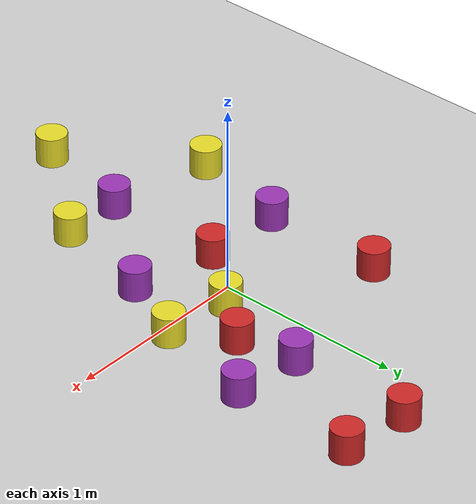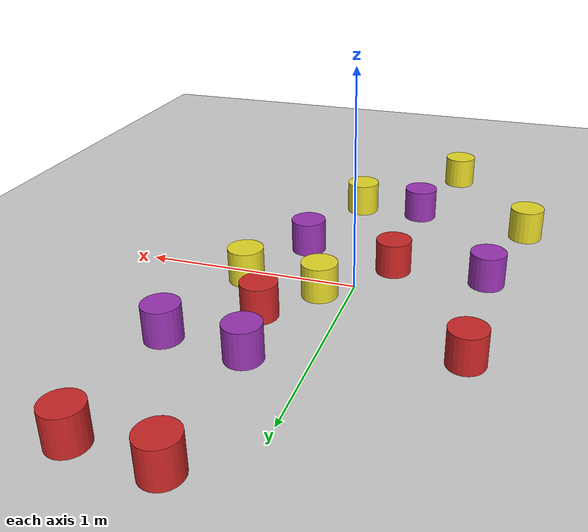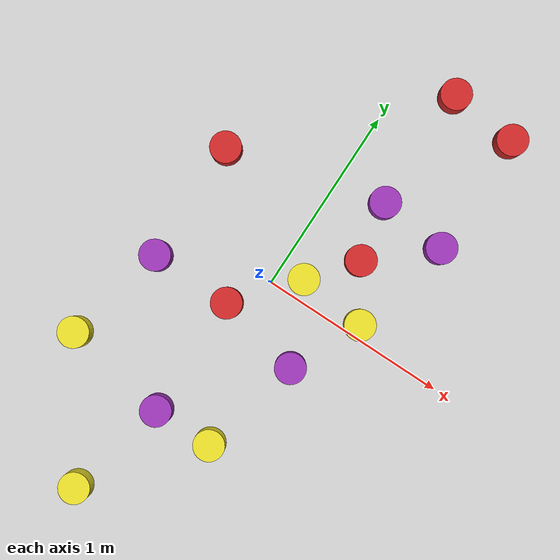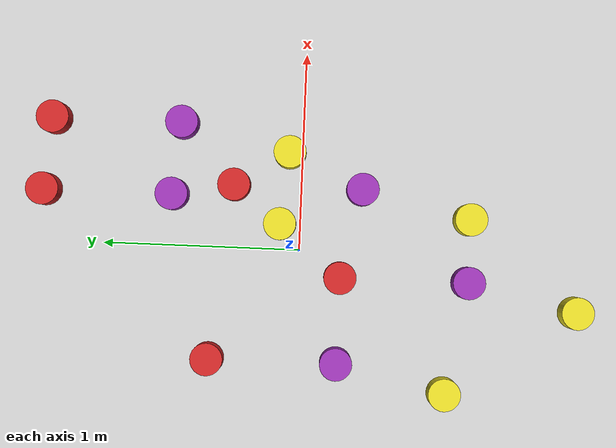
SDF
<sdf version="1.7">
 <world name="default">
  <model name="ground_plane">
   <static>1</static>
   <link name="link">
    <collision name="collision">
     <geometry><plane><normal>0 0 1</normal><size>100 100</size></plane></geometry>
     <surface>
      <contact><collide_bitmask>65535</collide_bitmask></contact>
      <friction><ode><mu>100</mu><mu2>50</mu2></ode></friction>
     </surface>
    </collision>
    <visual name="visual">
     <cast_shadows>0</cast_shadows>
     <geometry><plane><normal>0 0 1</normal><size>100 100</size></plane></geometry>
     <material>
      <script><uri>file://media/materials/scripts/gazebo.material</uri><name>Gazebo/Grey</name></script>
     </material>
    </visual>
   </link>
  </model>
  <model name="3obstacles_clone_1">
   <static>1</static>
   <link name="obstacle_1">
    <inertial>
     <mass>1</mass>
     <inertia>
      <ixx>1.73831e-05</ixx>
      <ixy>0</ixy>
      <ixz>0</ixz>
      <iyy>1.73831e-05</iyy>
      <iyz>0</iyz>
      <izz>1.4913e-05</izz>
     </inertia>
    </inertial>
    <pose>-0.44 1 0 0 -0 0</pose>
    <visual name="visual">
     <geometry><cylinder><radius>0.0820934</radius><length>0.16406</length></cylinder></geometry>
     <material>
      <lighting>1</lighting>
      <script><uri>file://media/materials/scripts/gazebo.material</uri><name>Gazebo/Red</name></script>
      <shader type="pixel"><normal_map>__default__</normal_map></shader>
      <ambient>1 0 0 1</ambient>
      <diffuse>1 0 0 1</diffuse>
      <specular>0.1 0.1 0.1 1</specular>
      <emissive>0 0 0 1</emissive>
     </material>
    </visual>
    <collision name="collision">
     <geometry><cylinder><radius>0.082093</radius><length>0.16406</length></cylinder></geometry>
     <surface>
      <friction>
       <ode><mu>1</mu><mu2>1</mu2><fdir1>0 0 0</fdir1><slip1>0</slip1><slip2>0</slip2></ode>
       <torsional>
        <coefficient>1</coefficient>
        <patch_radius>0</patch_radius>
        <surface_radius>0</surface_radius>
        <use_patch_radius>1</use_patch_radius>
        <ode><slip>0</slip></ode>
       </torsional>
      </friction>
      <bounce><restitution_coefficient>0</restitution_coefficient><threshold>1e+06</threshold></bounce>
      <contact>
       <collide_without_contact>0</collide_without_contact>
       <collide_without_contact_bitmask>1</collide_without_contact_bitmask>
       <collide_bitmask>1</collide_bitmask>
       <ode>
        <soft_cfm>0</soft_cfm>
        <soft_erp>0.2</soft_erp>
        <kp>1e+13</kp>
        <kd>1</kd>
        <max_vel>0.01</max_vel>
        <min_depth>0</min_depth>
       </ode>
       <bullet>
        <split_impulse>1</split_impulse>
        <split_impulse_penetration_threshold>-0.01</split_impulse_penetration_threshold>
        <soft_cfm>0</soft_cfm>
        <soft_erp>0.2</soft_erp>
        <kp>1e+13</kp>
        <kd>1</kd>
       </bullet>
      </contact>
     </surface>
    </collision>
   </link>
   <link name="obstacle_2">
    <inertial>
     <mass>0.00442567</mass>
     <inertia>
      <ixx>1.73831e-05</ixx>
      <ixy>0</ixy>
      <ixz>0</ixz>
      <iyy>1.73831e-05</iyy>
      <iyz>0</iyz>
      <izz>1.4913e-05</izz>
     </inertia>
    </inertial>
    <pose>-0.4398 0.35 0 0 -0 0</pose>
    <visual name="visual">
     <geometry><cylinder><radius>0.0820934</radius><length>0.16406</length></cylinder></geometry>
     <material>
      <lighting>1</lighting>
      <script><uri>file://media/materials/scripts/gazebo.material</uri><name>Gazebo/Purple</name></script>
      <shader type="pixel"><normal_map>__default__</normal_map></shader>
      <ambient>1 0 0 1</ambient>
      <diffuse>1 0 0 1</diffuse>
      <specular>0.1 0.1 0.1 1</specular>
      <emissive>0 0 0 1</emissive>
     </material>
    </visual>
    <collision name="collision">
     <geometry><cylinder><radius>0.082093</radius><length>0.16406</length></cylinder></geometry>
     <surface>
      <friction>
       <ode><mu>1</mu><mu2>1</mu2><fdir1>0 0 0</fdir1><slip1>0</slip1><slip2>0</slip2></ode>
       <torsional>
        <coefficient>1</coefficient>
        <patch_radius>0</patch_radius>
        <surface_radius>0</surface_radius>
        <use_patch_radius>1</use_patch_radius>
        <ode><slip>0</slip></ode>
       </torsional>
      </friction>
      <bounce><restitution_coefficient>0</restitution_coefficient><threshold>1e+06</threshold></bounce>
      <contact>
       <collide_without_contact>0</collide_without_contact>
       <collide_without_contact_bitmask>1</collide_without_contact_bitmask>
       <collide_bitmask>1</collide_bitmask>
       <ode>
        <soft_cfm>0</soft_cfm>
        <soft_erp>0.2</soft_erp>
        <kp>1e+13</kp>
        <kd>1</kd>
        <max_vel>0.01</max_vel>
        <min_depth>0</min_depth>
       </ode>
       <bullet>
        <split_impulse>1</split_impulse>
        <split_impulse_penetration_threshold>-0.01</split_impulse_penetration_threshold>
        <soft_cfm>0</soft_cfm>
        <soft_erp>0.2</soft_erp>
        <kp>1e+13</kp>
        <kd>1</kd>
       </bullet>
      </contact>
     </surface>
    </collision>
   </link>
   <link name="obstacle_3">
    <inertial>
     <mass>0.00442567</mass>
     <inertia>
      <ixx>1.73831e-05</ixx>
      <ixy>0</ixy>
      <ixz>0</ixz>
      <iyy>1.73831e-05</iyy>
      <iyz>0</iyz>
      <izz>1.4913e-05</izz>
     </inertia>
    </inertial>
    <pose>-0.57 -0.2 0 0 -0 0</pose>
    <visual name="visual">
     <geometry><cylinder><radius>0.0820934</radius><length>0.16406</length></cylinder></geometry>
     <material>
      <lighting>1</lighting>
      <script><uri>file://media/materials/scripts/gazebo.material</uri><name>Gazebo/Yellow</name></script>
      <shader type="pixel"><normal_map>__default__</normal_map></shader>
      <ambient>1 0 0 1</ambient>
      <diffuse>1 0 0 1</diffuse>
      <specular>0.1 0.1 0.1 1</specular>
      <emissive>0 0 0 1</emissive>
     </material>
    </visual>
    <collision name="collision">
     <geometry><cylinder><radius>0.082093</radius><length>0.16406</length></cylinder></geometry>
     <surface>
      <friction>
       <ode><mu>1</mu><mu2>1</mu2><fdir1>0 0 0</fdir1><slip1>0</slip1><slip2>0</slip2></ode>
       <torsional>
        <coefficient>1</coefficient>
        <patch_radius>0</patch_radius>
        <surface_radius>0</surface_radius>
        <use_patch_radius>1</use_patch_radius>
        <ode><slip>0</slip></ode>
       </torsional>
      </friction>
      <bounce><restitution_coefficient>0</restitution_coefficient><threshold>1e+06</threshold></bounce>
      <contact>
       <collide_without_contact>0</collide_without_contact>
       <collide_without_contact_bitmask>1</collide_without_contact_bitmask>
       <collide_bitmask>1</collide_bitmask>
       <ode>
        <soft_cfm>0</soft_cfm>
        <soft_erp>0.2</soft_erp>
        <kp>1e+13</kp>
        <kd>1</kd>
        <max_vel>0.01</max_vel>
        <min_depth>0</min_depth>
       </ode>
       <bullet>
        <split_impulse>1</split_impulse>
        <split_impulse_penetration_threshold>-0.01</split_impulse_penetration_threshold>
        <soft_cfm>0</soft_cfm>
        <soft_erp>0.2</soft_erp>
        <kp>1e+13</kp>
        <kd>1</kd>
       </bullet>
      </contact>
     </surface>
    </collision>
   </link>
   <static>1</static>
   <pose>0.701497 0.303004 0.077132 0 -0 0</pose>
  </model>
  <model name="3obstacles_clone_2">
   <static>1</static>
   <link name="obstacle_1">
    <inertial>
     <mass>1</mass>
     <inertia>
      <ixx>1.73831e-05</ixx>
      <ixy>0</ixy>
      <ixz>0</ixz>
      <iyy>1.73831e-05</iyy>
      <iyz>0</iyz>
      <izz>1.4913e-05</izz>
     </inertia>
    </inertial>
    <pose>-0.44 1 0 0 -0 0</pose>
    <visual name="visual">
     <geometry><cylinder><radius>0.0820934</radius><length>0.16406</length></cylinder></geometry>
     <material>
      <lighting>1</lighting>
      <script><uri>file://media/materials/scripts/gazebo.material</uri><name>Gazebo/Red</name></script>
      <shader type="pixel"><normal_map>__default__</normal_map></shader>
      <ambient>1 0 0 1</ambient>
      <diffuse>1 0 0 1</diffuse>
      <specular>0.1 0.1 0.1 1</specular>
      <emissive>0 0 0 1</emissive>
     </material>
    </visual>
    <collision name="collision">
     <geometry><cylinder><radius>0.082093</radius><length>0.16406</length></cylinder></geometry>
     <surface>
      <friction>
       <ode><mu>1</mu><mu2>1</mu2><fdir1>0 0 0</fdir1><slip1>0</slip1><slip2>0</slip2></ode>
       <torsional>
        <coefficient>1</coefficient>
        <patch_radius>0</patch_radius>
        <surface_radius>0</surface_radius>
        <use_patch_radius>1</use_patch_radius>
        <ode><slip>0</slip></ode>
       </torsional>
      </friction>
      <bounce><restitution_coefficient>0</restitution_coefficient><threshold>1e+06</threshold></bounce>
      <contact>
       <collide_without_contact>0</collide_without_contact>
       <collide_without_contact_bitmask>1</collide_without_contact_bitmask>
       <collide_bitmask>1</collide_bitmask>
       <ode>
        <soft_cfm>0</soft_cfm>
        <soft_erp>0.2</soft_erp>
        <kp>1e+13</kp>
        <kd>1</kd>
        <max_vel>0.01</max_vel>
        <min_depth>0</min_depth>
       </ode>
       <bullet>
        <split_impulse>1</split_impulse>
        <split_impulse_penetration_threshold>-0.01</split_impulse_penetration_threshold>
        <soft_cfm>0</soft_cfm>
        <soft_erp>0.2</soft_erp>
        <kp>1e+13</kp>
        <kd>1</kd>
       </bullet>
      </contact>
     </surface>
    </collision>
   </link>
   <link name="obstacle_2">
    <inertial>
     <mass>0.00442567</mass>
     <inertia>
      <ixx>1.73831e-05</ixx>
      <ixy>0</ixy>
      <ixz>0</ixz>
      <iyy>1.73831e-05</iyy>
      <iyz>0</iyz>
      <izz>1.4913e-05</izz>
     </inertia>
    </inertial>
    <pose>-0.4398 0.35 0 0 -0 0</pose>
    <visual name="visual">
     <geometry><cylinder><radius>0.0820934</radius><length>0.16406</length></cylinder></geometry>
     <material>
      <lighting>1</lighting>
      <script><uri>file://media/materials/scripts/gazebo.material</uri><name>Gazebo/Purple</name></script>
      <shader type="pixel"><normal_map>__default__</normal_map></shader>
      <ambient>1 0 0 1</ambient>
      <diffuse>1 0 0 1</diffuse>
      <specular>0.1 0.1 0.1 1</specular>
      <emissive>0 0 0 1</emissive>
     </material>
    </visual>
    <collision name="collision">
     <geometry><cylinder><radius>0.082093</radius><length>0.16406</length></cylinder></geometry>
     <surface>
      <friction>
       <ode><mu>1</mu><mu2>1</mu2><fdir1>0 0 0</fdir1><slip1>0</slip1><slip2>0</slip2></ode>
       <torsional>
        <coefficient>1</coefficient>
        <patch_radius>0</patch_radius>
        <surface_radius>0</surface_radius>
        <use_patch_radius>1</use_patch_radius>
        <ode><slip>0</slip></ode>
       </torsional>
      </friction>
      <bounce><restitution_coefficient>0</restitution_coefficient><threshold>1e+06</threshold></bounce>
      <contact>
       <collide_without_contact>0</collide_without_contact>
       <collide_without_contact_bitmask>1</collide_without_contact_bitmask>
       <collide_bitmask>1</collide_bitmask>
       <ode>
        <soft_cfm>0</soft_cfm>
        <soft_erp>0.2</soft_erp>
        <kp>1e+13</kp>
        <kd>1</kd>
        <max_vel>0.01</max_vel>
        <min_depth>0</min_depth>
       </ode>
       <bullet>
        <split_impulse>1</split_impulse>
        <split_impulse_penetration_threshold>-0.01</split_impulse_penetration_threshold>
        <soft_cfm>0</soft_cfm>
        <soft_erp>0.2</soft_erp>
        <kp>1e+13</kp>
        <kd>1</kd>
       </bullet>
      </contact>
     </surface>
    </collision>
   </link>
   <link name="obstacle_3">
    <inertial>
     <mass>0.00442567</mass>
     <inertia>
      <ixx>1.73831e-05</ixx>
      <ixy>0</ixy>
      <ixz>0</ixz>
      <iyy>1.73831e-05</iyy>
      <iyz>0</iyz>
      <izz>1.4913e-05</izz>
     </inertia>
    </inertial>
    <pose>-0.57 -0.2 0 0 -0 0</pose>
    <visual name="visual">
     <geometry><cylinder><radius>0.0820934</radius><length>0.16406</length></cylinder></geometry>
     <material>
      <lighting>1</lighting>
      <script><uri>file://media/materials/scripts/gazebo.material</uri><name>Gazebo/Yellow</name></script>
      <shader type="pixel"><normal_map>__default__</normal_map></shader>
      <ambient>1 0 0 1</ambient>
      <diffuse>1 0 0 1</diffuse>
      <specular>0.1 0.1 0.1 1</specular>
      <emissive>0 0 0 1</emissive>
     </material>
    </visual>
    <collision name="collision">
     <geometry><cylinder><radius>0.082093</radius><length>0.16406</length></cylinder></geometry>
     <surface>
      <friction>
       <ode><mu>1</mu><mu2>1</mu2><fdir1>0 0 0</fdir1><slip1>0</slip1><slip2>0</slip2></ode>
       <torsional>
        <coefficient>1</coefficient>
        <patch_radius>0</patch_radius>
        <surface_radius>0</surface_radius>
        <use_patch_radius>1</use_patch_radius>
        <ode><slip>0</slip></ode>
       </torsional>
      </friction>
      <bounce><restitution_coefficient>0</restitution_coefficient><threshold>1e+06</threshold></bounce>
      <contact>
       <collide_without_contact>0</collide_without_contact>
       <collide_without_contact_bitmask>1</collide_without_contact_bitmask>
       <collide_bitmask>1</collide_bitmask>
       <ode>
        <soft_cfm>0</soft_cfm>
        <soft_erp>0.2</soft_erp>
        <kp>1e+13</kp>
        <kd>1</kd>
        <max_vel>0.01</max_vel>
        <min_depth>0</min_depth>
       </ode>
       <bullet>
        <split_impulse>1</split_impulse>
        <split_impulse_penetration_threshold>-0.01</split_impulse_penetration_threshold>
        <soft_cfm>0</soft_cfm>
        <soft_erp>0.2</soft_erp>
        <kp>1e+13</kp>
        <kd>1</kd>
       </bullet>
      </contact>
     </surface>
    </collision>
   </link>
   <static>1</static>
   <pose>1.0649 0.265235 0.077132 0 -0 0</pose>
  </model>
  <model name="3obstacles_clone_5">
   <static>1</static>
   <link name="obstacle_1">
    <inertial>
     <mass>1</mass>
     <inertia>
      <ixx>1.73831e-05</ixx>
      <ixy>0</ixy>
      <ixz>0</ixz>
      <iyy>1.73831e-05</iyy>
      <iyz>0</iyz>
      <izz>1.4913e-05</izz>
     </inertia>
    </inertial>
    <pose>-0.44 1 0 0 -0 0</pose>
    <visual name="visual">
     <geometry><cylinder><radius>0.0820934</radius><length>0.16406</length></cylinder></geometry>
     <material>
      <lighting>1</lighting>
      <script><uri>file://media/materials/scripts/gazebo.material</uri><name>Gazebo/Red</name></script>
      <shader type="pixel"><normal_map>__default__</normal_map></shader>
      <ambient>1 0 0 1</ambient>
      <diffuse>1 0 0 1</diffuse>
      <specular>0.1 0.1 0.1 1</specular>
      <emissive>0 0 0 1</emissive>
     </material>
    </visual>
    <collision name="collision">
     <geometry><cylinder><radius>0.082093</radius><length>0.16406</length></cylinder></geometry>
     <surface>
      <friction>
       <ode><mu>1</mu><mu2>1</mu2><fdir1>0 0 0</fdir1><slip1>0</slip1><slip2>0</slip2></ode>
       <torsional>
        <coefficient>1</coefficient>
        <patch_radius>0</patch_radius>
        <surface_radius>0</surface_radius>
        <use_patch_radius>1</use_patch_radius>
        <ode><slip>0</slip></ode>
       </torsional>
      </friction>
      <bounce><restitution_coefficient>0</restitution_coefficient><threshold>1e+06</threshold></bounce>
      <contact>
       <collide_without_contact>0</collide_without_contact>
       <collide_without_contact_bitmask>1</collide_without_contact_bitmask>
       <collide_bitmask>1</collide_bitmask>
       <ode>
        <soft_cfm>0</soft_cfm>
        <soft_erp>0.2</soft_erp>
        <kp>1e+13</kp>
        <kd>1</kd>
        <max_vel>0.01</max_vel>
        <min_depth>0</min_depth>
       </ode>
       <bullet>
        <split_impulse>1</split_impulse>
        <split_impulse_penetration_threshold>-0.01</split_impulse_penetration_threshold>
        <soft_cfm>0</soft_cfm>
        <soft_erp>0.2</soft_erp>
        <kp>1e+13</kp>
        <kd>1</kd>
       </bullet>
      </contact>
     </surface>
    </collision>
   </link>
   <link name="obstacle_2">
    <inertial>
     <mass>0.00442567</mass>
     <inertia>
      <ixx>1.73831e-05</ixx>
      <ixy>0</ixy>
      <ixz>0</ixz>
      <iyy>1.73831e-05</iyy>
      <iyz>0</iyz>
      <izz>1.4913e-05</izz>
     </inertia>
    </inertial>
    <pose>-0.4398 0.35 0 0 -0 0</pose>
    <visual name="visual">
     <geometry><cylinder><radius>0.0820934</radius><length>0.16406</length></cylinder></geometry>
     <material>
      <lighting>1</lighting>
      <script><uri>file://media/materials/scripts/gazebo.material</uri><name>Gazebo/Purple</name></script>
      <shader type="pixel"><normal_map>__default__</normal_map></shader>
      <ambient>1 0 0 1</ambient>
      <diffuse>1 0 0 1</diffuse>
      <specular>0.1 0.1 0.1 1</specular>
      <emissive>0 0 0 1</emissive>
     </material>
    </visual>
    <collision name="collision">
     <geometry><cylinder><radius>0.082093</radius><length>0.16406</length></cylinder></geometry>
     <surface>
      <friction>
       <ode><mu>1</mu><mu2>1</mu2><fdir1>0 0 0</fdir1><slip1>0</slip1><slip2>0</slip2></ode>
       <torsional>
        <coefficient>1</coefficient>
        <patch_radius>0</patch_radius>
        <surface_radius>0</surface_radius>
        <use_patch_radius>1</use_patch_radius>
        <ode><slip>0</slip></ode>
       </torsional>
      </friction>
      <bounce><restitution_coefficient>0</restitution_coefficient><threshold>1e+06</threshold></bounce>
      <contact>
       <collide_without_contact>0</collide_without_contact>
       <collide_without_contact_bitmask>1</collide_without_contact_bitmask>
       <collide_bitmask>1</collide_bitmask>
       <ode>
        <soft_cfm>0</soft_cfm>
        <soft_erp>0.2</soft_erp>
        <kp>1e+13</kp>
        <kd>1</kd>
        <max_vel>0.01</max_vel>
        <min_depth>0</min_depth>
       </ode>
       <bullet>
        <split_impulse>1</split_impulse>
        <split_impulse_penetration_threshold>-0.01</split_impulse_penetration_threshold>
        <soft_cfm>0</soft_cfm>
        <soft_erp>0.2</soft_erp>
        <kp>1e+13</kp>
        <kd>1</kd>
       </bullet>
      </contact>
     </surface>
    </collision>
   </link>
   <link name="obstacle_3">
    <inertial>
     <mass>0.00442567</mass>
     <inertia>
      <ixx>1.73831e-05</ixx>
      <ixy>0</ixy>
      <ixz>0</ixz>
      <iyy>1.73831e-05</iyy>
      <iyz>0</iyz>
      <izz>1.4913e-05</izz>
     </inertia>
    </inertial>
    <pose>-0.57 -0.2 0 0 -0 0</pose>
    <visual name="visual">
     <geometry><cylinder><radius>0.0820934</radius><length>0.16406</length></cylinder></geometry>
     <material>
      <lighting>1</lighting>
      <script><uri>file://media/materials/scripts/gazebo.material</uri><name>Gazebo/Yellow</name></script>
      <shader type="pixel"><normal_map>__default__</normal_map></shader>
      <ambient>1 0 0 1</ambient>
      <diffuse>1 0 0 1</diffuse>
      <specular>0.1 0.1 0.1 1</specular>
      <emissive>0 0 0 1</emissive>
     </material>
    </visual>
    <collision name="collision">
     <geometry><cylinder><radius>0.082093</radius><length>0.16406</length></cylinder></geometry>
     <surface>
      <friction>
       <ode><mu>1</mu><mu2>1</mu2><fdir1>0 0 0</fdir1><slip1>0</slip1><slip2>0</slip2></ode>
       <torsional>
        <coefficient>1</coefficient>
        <patch_radius>0</patch_radius>
        <surface_radius>0</surface_radius>
        <use_patch_radius>1</use_patch_radius>
        <ode><slip>0</slip></ode>
       </torsional>
      </friction>
      <bounce><restitution_coefficient>0</restitution_coefficient><threshold>1e+06</threshold></bounce>
      <contact>
       <collide_without_contact>0</collide_without_contact>
       <collide_without_contact_bitmask>1</collide_without_contact_bitmask>
       <collide_bitmask>1</collide_bitmask>
       <ode>
        <soft_cfm>0</soft_cfm>
        <soft_erp>0.2</soft_erp>
        <kp>1e+13</kp>
        <kd>1</kd>
        <max_vel>0.01</max_vel>
        <min_depth>0</min_depth>
       </ode>
       <bullet>
        <split_impulse>1</split_impulse>
        <split_impulse_penetration_threshold>-0.01</split_impulse_penetration_threshold>
        <soft_cfm>0</soft_cfm>
        <soft_erp>0.2</soft_erp>
        <kp>1e+13</kp>
        <kd>1</kd>
       </bullet>
      </contact>
     </surface>
    </collision>
   </link>
   <static>1</static>
   <pose>0.76015 -0.659035 0.077132 0 -0 0</pose>
  </model>
  <model name="3obstacles_clone_6">
   <static>1</static>
   <link name="obstacle_1">
    <inertial>
     <mass>1</mass>
     <inertia>
      <ixx>1.73831e-05</ixx>
      <ixy>0</ixy>
      <ixz>0</ixz>
      <iyy>1.73831e-05</iyy>
      <iyz>0</iyz>
      <izz>1.4913e-05</izz>
     </inertia>
    </inertial>
    <pose>-0.44 1 0 0 -0 0</pose>
    <visual name="visual">
     <geometry><cylinder><radius>0.0820934</radius><length>0.16406</length></cylinder></geometry>
     <material>
      <lighting>1</lighting>
      <script><uri>file://media/materials/scripts/gazebo.material</uri><name>Gazebo/Red</name></script>
      <shader type="pixel"><normal_map>__default__</normal_map></shader>
      <ambient>1 0 0 1</ambient>
      <diffuse>1 0 0 1</diffuse>
      <specular>0.1 0.1 0.1 1</specular>
      <emissive>0 0 0 1</emissive>
     </material>
    </visual>
    <collision name="collision">
     <geometry><cylinder><radius>0.082093</radius><length>0.16406</length></cylinder></geometry>
     <surface>
      <friction>
       <ode><mu>1</mu><mu2>1</mu2><fdir1>0 0 0</fdir1><slip1>0</slip1><slip2>0</slip2></ode>
       <torsional>
        <coefficient>1</coefficient>
        <patch_radius>0</patch_radius>
        <surface_radius>0</surface_radius>
        <use_patch_radius>1</use_patch_radius>
        <ode><slip>0</slip></ode>
       </torsional>
      </friction>
      <bounce><restitution_coefficient>0</restitution_coefficient><threshold>1e+06</threshold></bounce>
      <contact>
       <collide_without_contact>0</collide_without_contact>
       <collide_without_contact_bitmask>1</collide_without_contact_bitmask>
       <collide_bitmask>1</collide_bitmask>
       <ode>
        <soft_cfm>0</soft_cfm>
        <soft_erp>0.2</soft_erp>
        <kp>1e+13</kp>
        <kd>1</kd>
        <max_vel>0.01</max_vel>
        <min_depth>0</min_depth>
       </ode>
       <bullet>
        <split_impulse>1</split_impulse>
        <split_impulse_penetration_threshold>-0.01</split_impulse_penetration_threshold>
        <soft_cfm>0</soft_cfm>
        <soft_erp>0.2</soft_erp>
        <kp>1e+13</kp>
        <kd>1</kd>
       </bullet>
      </contact>
     </surface>
    </collision>
   </link>
   <link name="obstacle_2">
    <inertial>
     <mass>0.00442567</mass>
     <inertia>
      <ixx>1.73831e-05</ixx>
      <ixy>0</ixy>
      <ixz>0</ixz>
      <iyy>1.73831e-05</iyy>
      <iyz>0</iyz>
      <izz>1.4913e-05</izz>
     </inertia>
    </inertial>
    <pose>-0.4398 0.35 0 0 -0 0</pose>
    <visual name="visual">
     <geometry><cylinder><radius>0.0820934</radius><length>0.16406</length></cylinder></geometry>
     <material>
      <lighting>1</lighting>
      <script><uri>file://media/materials/scripts/gazebo.material</uri><name>Gazebo/Purple</name></script>
      <shader type="pixel"><normal_map>__default__</normal_map></shader>
      <ambient>1 0 0 1</ambient>
      <diffuse>1 0 0 1</diffuse>
      <specular>0.1 0.1 0.1 1</specular>
      <emissive>0 0 0 1</emissive>
     </material>
    </visual>
    <collision name="collision">
     <geometry><cylinder><radius>0.082093</radius><length>0.16406</length></cylinder></geometry>
     <surface>
      <friction>
       <ode><mu>1</mu><mu2>1</mu2><fdir1>0 0 0</fdir1><slip1>0</slip1><slip2>0</slip2></ode>
       <torsional>
        <coefficient>1</coefficient>
        <patch_radius>0</patch_radius>
        <surface_radius>0</surface_radius>
        <use_patch_radius>1</use_patch_radius>
        <ode><slip>0</slip></ode>
       </torsional>
      </friction>
      <bounce><restitution_coefficient>0</restitution_coefficient><threshold>1e+06</threshold></bounce>
      <contact>
       <collide_without_contact>0</collide_without_contact>
       <collide_without_contact_bitmask>1</collide_without_contact_bitmask>
       <collide_bitmask>1</collide_bitmask>
       <ode>
        <soft_cfm>0</soft_cfm>
        <soft_erp>0.2</soft_erp>
        <kp>1e+13</kp>
        <kd>1</kd>
        <max_vel>0.01</max_vel>
        <min_depth>0</min_depth>
       </ode>
       <bullet>
        <split_impulse>1</split_impulse>
        <split_impulse_penetration_threshold>-0.01</split_impulse_penetration_threshold>
        <soft_cfm>0</soft_cfm>
        <soft_erp>0.2</soft_erp>
        <kp>1e+13</kp>
        <kd>1</kd>
       </bullet>
      </contact>
     </surface>
    </collision>
   </link>
   <link name="obstacle_3">
    <inertial>
     <mass>0.00442567</mass>
     <inertia>
      <ixx>1.73831e-05</ixx>
      <ixy>0</ixy>
      <ixz>0</ixz>
      <iyy>1.73831e-05</iyy>
      <iyz>0</iyz>
      <izz>1.4913e-05</izz>
     </inertia>
    </inertial>
    <pose>-0.57 -0.2 0 0 -0 0</pose>
    <visual name="visual">
     <geometry><cylinder><radius>0.0820934</radius><length>0.16406</length></cylinder></geometry>
     <material>
      <lighting>1</lighting>
      <script><uri>file://media/materials/scripts/gazebo.material</uri><name>Gazebo/Yellow</name></script>
      <shader type="pixel"><normal_map>__default__</normal_map></shader>
      <ambient>1 0 0 1</ambient>
      <diffuse>1 0 0 1</diffuse>
      <specular>0.1 0.1 0.1 1</specular>
      <emissive>0 0 0 1</emissive>
     </material>
    </visual>
    <collision name="collision">
     <geometry><cylinder><radius>0.082093</radius><length>0.16406</length></cylinder></geometry>
     <surface>
      <friction>
       <ode><mu>1</mu><mu2>1</mu2><fdir1>0 0 0</fdir1><slip1>0</slip1><slip2>0</slip2></ode>
       <torsional>
        <coefficient>1</coefficient>
        <patch_radius>0</patch_radius>
        <surface_radius>0</surface_radius>
        <use_patch_radius>1</use_patch_radius>
        <ode><slip>0</slip></ode>
       </torsional>
      </friction>
      <bounce><restitution_coefficient>0</restitution_coefficient><threshold>1e+06</threshold></bounce>
      <contact>
       <collide_without_contact>0</collide_without_contact>
       <collide_without_contact_bitmask>1</collide_without_contact_bitmask>
       <collide_bitmask>1</collide_bitmask>
       <ode>
        <soft_cfm>0</soft_cfm>
        <soft_erp>0.2</soft_erp>
        <kp>1e+13</kp>
        <kd>1</kd>
        <max_vel>0.01</max_vel>
        <min_depth>0</min_depth>
       </ode>
       <bullet>
        <split_impulse>1</split_impulse>
        <split_impulse_penetration_threshold>-0.01</split_impulse_penetration_threshold>
        <soft_cfm>0</soft_cfm>
        <soft_erp>0.2</soft_erp>
        <kp>1e+13</kp>
        <kd>1</kd>
       </bullet>
      </contact>
     </surface>
    </collision>
   </link>
   <static>1</static>
   <pose>-0.123855 -0.556444 0.077132 0 -0 0</pose>
  </model>
  <model name="3obstacles_clone_7">
   <static>1</static>
   <link name="obstacle_1">
    <inertial>
     <mass>1</mass>
     <inertia>
      <ixx>1.73831e-05</ixx>
      <ixy>0</ixy>
      <ixz>0</ixz>
      <iyy>1.73831e-05</iyy>
      <iyz>0</iyz>
      <izz>1.4913e-05</izz>
     </inertia>
    </inertial>
    <pose>-0.44 1 0 0 -0 0</pose>
    <visual name="visual">
     <geometry><cylinder><radius>0.0820934</radius><length>0.16406</length></cylinder></geometry>
     <material>
      <lighting>1</lighting>
      <script><uri>file://media/materials/scripts/gazebo.material</uri><name>Gazebo/Red</name></script>
      <shader type="pixel"><normal_map>__default__</normal_map></shader>
      <ambient>1 0 0 1</ambient>
      <diffuse>1 0 0 1</diffuse>
      <specular>0.1 0.1 0.1 1</specular>
      <emissive>0 0 0 1</emissive>
     </material>
    </visual>
    <collision name="collision">
     <geometry><cylinder><radius>0.082093</radius><length>0.16406</length></cylinder></geometry>
     <surface>
      <friction>
       <ode><mu>1</mu><mu2>1</mu2><fdir1>0 0 0</fdir1><slip1>0</slip1><slip2>0</slip2></ode>
       <torsional>
        <coefficient>1</coefficient>
        <patch_radius>0</patch_radius>
        <surface_radius>0</surface_radius>
        <use_patch_radius>1</use_patch_radius>
        <ode><slip>0</slip></ode>
       </torsional>
      </friction>
      <bounce><restitution_coefficient>0</restitution_coefficient><threshold>1e+06</threshold></bounce>
      <contact>
       <collide_without_contact>0</collide_without_contact>
       <collide_without_contact_bitmask>1</collide_without_contact_bitmask>
       <collide_bitmask>1</collide_bitmask>
       <ode>
        <soft_cfm>0</soft_cfm>
        <soft_erp>0.2</soft_erp>
        <kp>1e+13</kp>
        <kd>1</kd>
        <max_vel>0.01</max_vel>
        <min_depth>0</min_depth>
       </ode>
       <bullet>
        <split_impulse>1</split_impulse>
        <split_impulse_penetration_threshold>-0.01</split_impulse_penetration_threshold>
        <soft_cfm>0</soft_cfm>
        <soft_erp>0.2</soft_erp>
        <kp>1e+13</kp>
        <kd>1</kd>
       </bullet>
      </contact>
     </surface>
    </collision>
   </link>
   <link name="obstacle_2">
    <inertial>
     <mass>0.00442567</mass>
     <inertia>
      <ixx>1.73831e-05</ixx>
      <ixy>0</ixy>
      <ixz>0</ixz>
      <iyy>1.73831e-05</iyy>
      <iyz>0</iyz>
      <izz>1.4913e-05</izz>
     </inertia>
    </inertial>
    <pose>-0.4398 0.35 0 0 -0 0</pose>
    <visual name="visual">
     <geometry><cylinder><radius>0.0820934</radius><length>0.16406</length></cylinder></geometry>
     <material>
      <lighting>1</lighting>
      <script><uri>file://media/materials/scripts/gazebo.material</uri><name>Gazebo/Purple</name></script>
      <shader type="pixel"><normal_map>__default__</normal_map></shader>
      <ambient>1 0 0 1</ambient>
      <diffuse>1 0 0 1</diffuse>
      <specular>0.1 0.1 0.1 1</specular>
      <emissive>0 0 0 1</emissive>
     </material>
    </visual>
    <collision name="collision">
     <geometry><cylinder><radius>0.082093</radius><length>0.16406</length></cylinder></geometry>
     <surface>
      <friction>
       <ode><mu>1</mu><mu2>1</mu2><fdir1>0 0 0</fdir1><slip1>0</slip1><slip2>0</slip2></ode>
       <torsional>
        <coefficient>1</coefficient>
        <patch_radius>0</patch_radius>
        <surface_radius>0</surface_radius>
        <use_patch_radius>1</use_patch_radius>
        <ode><slip>0</slip></ode>
       </torsional>
      </friction>
      <bounce><restitution_coefficient>0</restitution_coefficient><threshold>1e+06</threshold></bounce>
      <contact>
       <collide_without_contact>0</collide_without_contact>
       <collide_without_contact_bitmask>1</collide_without_contact_bitmask>
       <collide_bitmask>1</collide_bitmask>
       <ode>
        <soft_cfm>0</soft_cfm>
        <soft_erp>0.2</soft_erp>
        <kp>1e+13</kp>
        <kd>1</kd>
        <max_vel>0.01</max_vel>
        <min_depth>0</min_depth>
       </ode>
       <bullet>
        <split_impulse>1</split_impulse>
        <split_impulse_penetration_threshold>-0.01</split_impulse_penetration_threshold>
        <soft_cfm>0</soft_cfm>
        <soft_erp>0.2</soft_erp>
        <kp>1e+13</kp>
        <kd>1</kd>
       </bullet>
      </contact>
     </surface>
    </collision>
   </link>
   <link name="obstacle_3">
    <inertial>
     <mass>0.00442567</mass>
     <inertia>
      <ixx>1.73831e-05</ixx>
      <ixy>0</ixy>
      <ixz>0</ixz>
      <iyy>1.73831e-05</iyy>
      <iyz>0</iyz>
      <izz>1.4913e-05</izz>
     </inertia>
    </inertial>
    <pose>-0.57 -0.2 0 0 -0 0</pose>
    <visual name="visual">
     <geometry><cylinder><radius>0.0820934</radius><length>0.16406</length></cylinder></geometry>
     <material>
      <lighting>1</lighting>
      <script><uri>file://media/materials/scripts/gazebo.material</uri><name>Gazebo/Yellow</name></script>
      <shader type="pixel"><normal_map>__default__</normal_map></shader>
      <ambient>1 0 0 1</ambient>
      <diffuse>1 0 0 1</diffuse>
      <specular>0.1 0.1 0.1 1</specular>
      <emissive>0 0 0 1</emissive>
     </material>
    </visual>
    <collision name="collision">
     <geometry><cylinder><radius>0.082093</radius><length>0.16406</length></cylinder></geometry>
     <surface>
      <friction>
       <ode><mu>1</mu><mu2>1</mu2><fdir1>0 0 0</fdir1><slip1>0</slip1><slip2>0</slip2></ode>
       <torsional>
        <coefficient>1</coefficient>
        <patch_radius>0</patch_radius>
        <surface_radius>0</surface_radius>
        <use_patch_radius>1</use_patch_radius>
        <ode><slip>0</slip></ode>
       </torsional>
      </friction>
      <bounce><restitution_coefficient>0</restitution_coefficient><threshold>1e+06</threshold></bounce>
      <contact>
       <collide_without_contact>0</collide_without_contact>
       <collide_without_contact_bitmask>1</collide_without_contact_bitmask>
       <collide_bitmask>1</collide_bitmask>
       <ode>
        <soft_cfm>0</soft_cfm>
        <soft_erp>0.2</soft_erp>
        <kp>1e+13</kp>
        <kd>1</kd>
        <max_vel>0.01</max_vel>
        <min_depth>0</min_depth>
       </ode>
       <bullet>
        <split_impulse>1</split_impulse>
        <split_impulse_penetration_threshold>-0.01</split_impulse_penetration_threshold>
        <soft_cfm>0</soft_cfm>
        <soft_erp>0.2</soft_erp>
        <kp>1e+13</kp>
        <kd>1</kd>
       </bullet>
      </contact>
     </surface>
    </collision>
   </link>
   <static>1</static>
   <pose>0.310273 -1.21059 0.077132 0 -0 0</pose>
  </model>
 </world>
</sdf>
